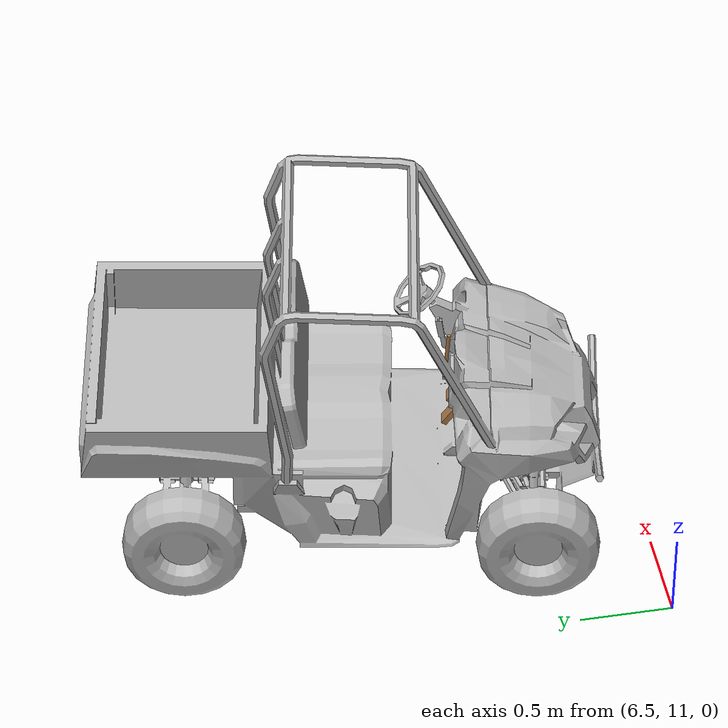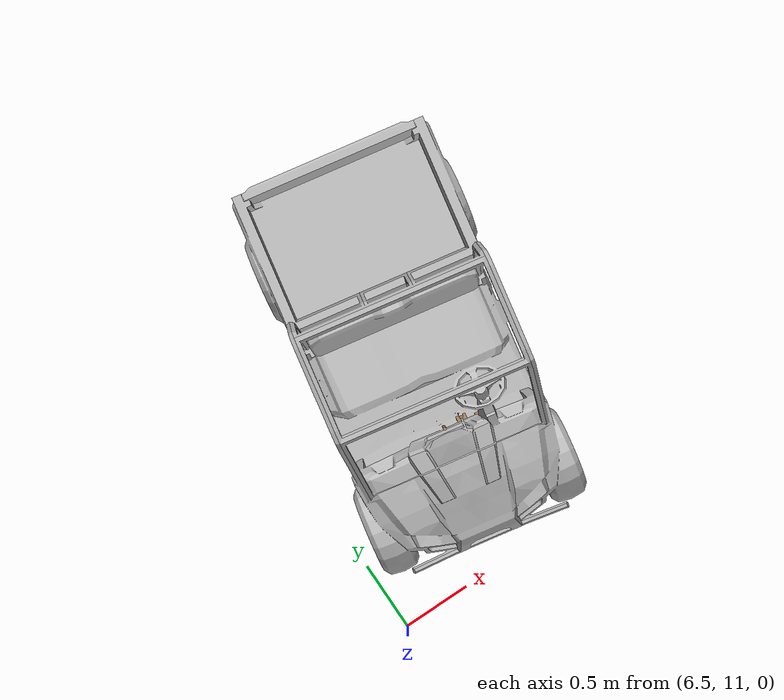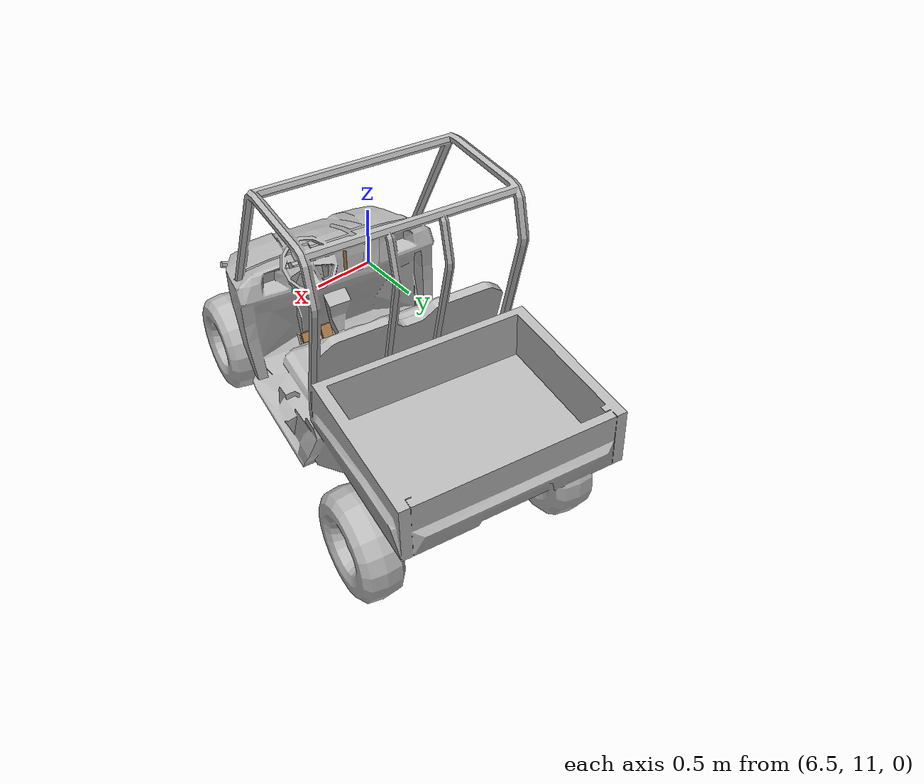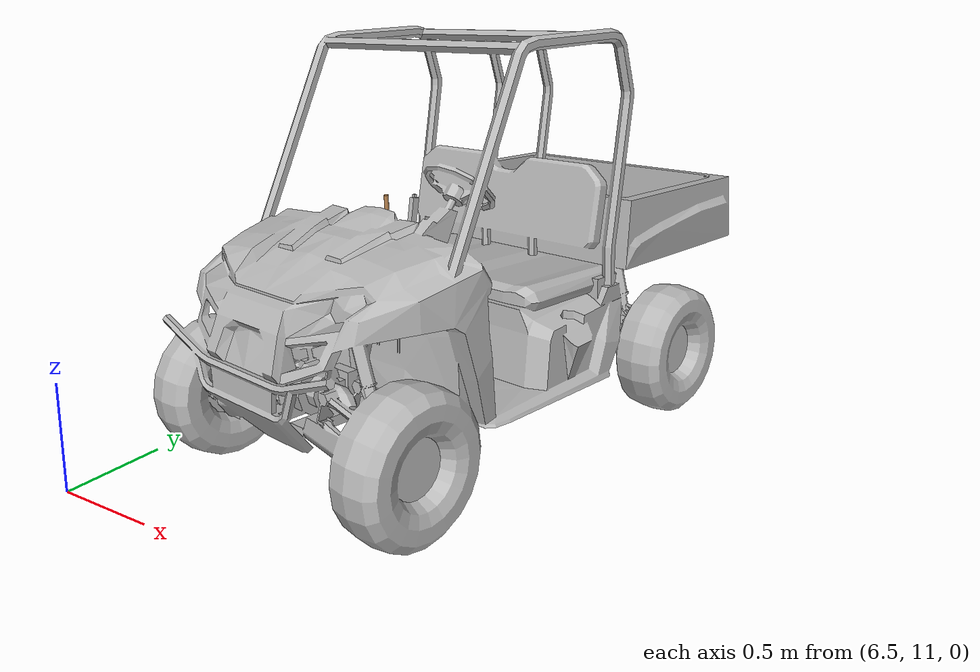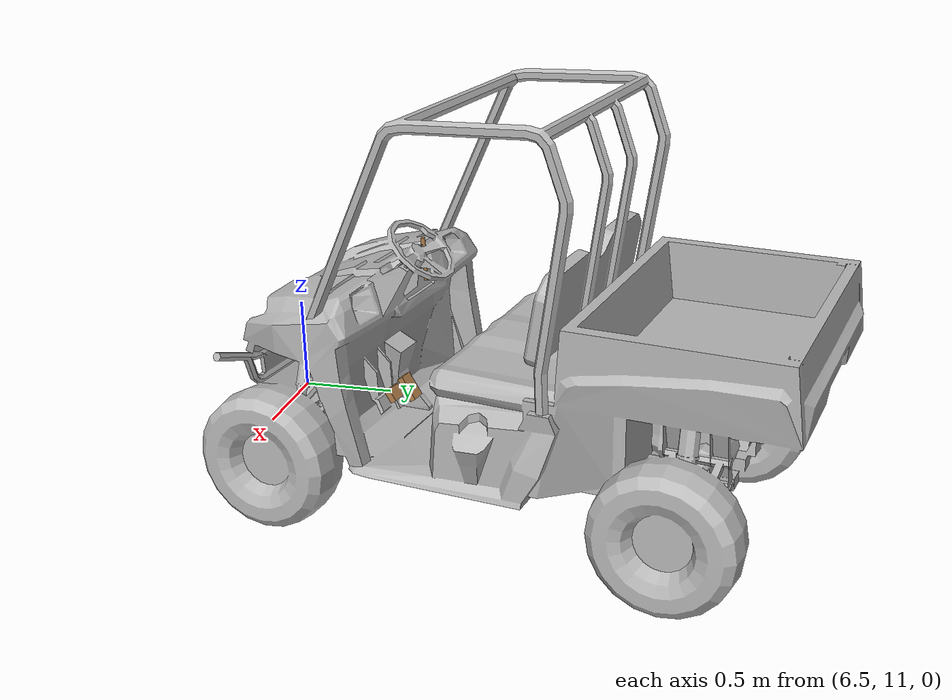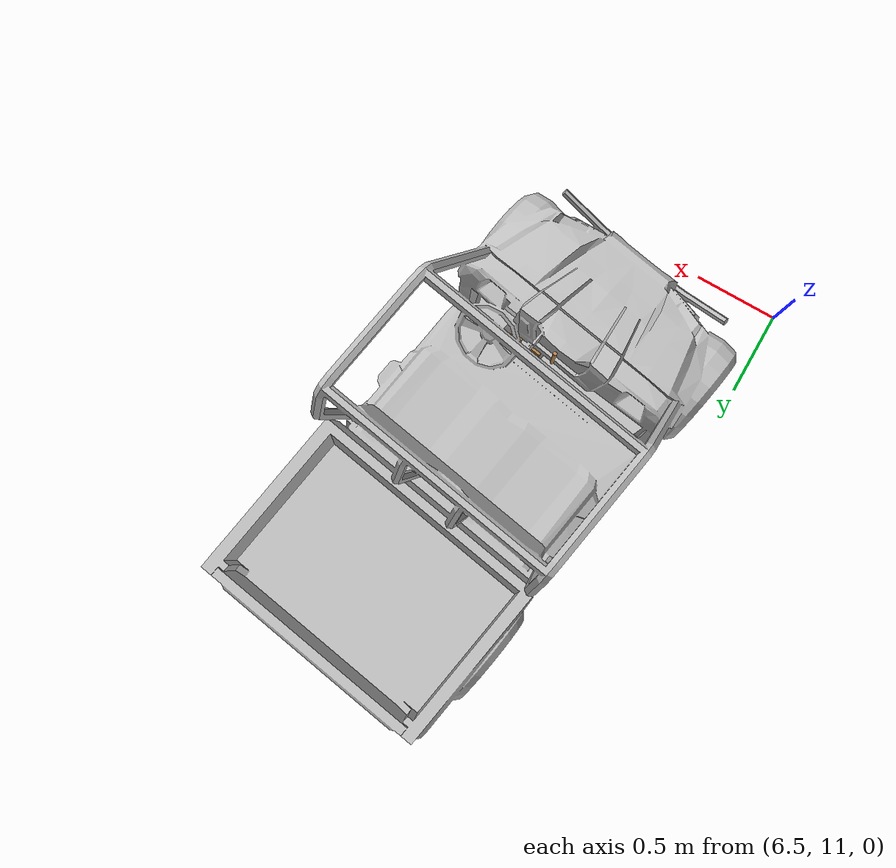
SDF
<sdf version="1.6">
 <world name="default">
  <model name="polaris_ranger_ev_clone_1_clone_clone_0">
   <static>true</static>
   <link name="chassis">
    <inertial>
     <mass>720</mass>
     <inertia><ixx>140</ixx><ixy>0</ixy><iyy>550</iyy><ixz>0</ixz><iyz>0</iyz><izz>550</izz></inertia>
    </inertial>
    <visual name="visual">
     <pose>0 0 0 0 0 -1.5708</pose>
     <geometry><mesh><uri>model://polaris_ranger_ev/meshes/polaris.dae</uri><scale>1 1 1</scale></mesh></geometry>
     <material>
      <script>
       <uri>model://polaris_ranger_ev/materials/scripts</uri>
       <uri>model://polaris_ranger_ev/materials/textures</uri>
       <name>Polaris/Diffuse</name>
      </script>
     </material>
    </visual>
    <collision name="chassis_bottom">
     <pose>0 0 0.35 0 -0 0</pose>
     <geometry><box><size>2 1 0.1</size></box></geometry>
    </collision>
    <collision name="cargo_bottom">
     <pose>-0.9 0 0.9 0 -0 0</pose>
     <geometry><box><size>0.9 1.2 0.01</size></box></geometry>
    </collision>
    <collision name="cargo_front">
     <pose>-0.45 0 1.025 0 -0 0</pose>
     <geometry><box><size>0.05 1.2 0.25</size></box></geometry>
    </collision>
    <collision name="cargo_back">
     <pose>-1.35 0 1.025 0 -0 0</pose>
     <geometry><box><size>0.05 1.2 0.25</size></box></geometry>
    </collision>
    <collision name="cargo_left">
     <pose>-0.9 0.6 1.025 0 -0 0</pose>
     <geometry><box><size>0.9 0.05 0.25</size></box></geometry>
    </collision>
    <collision name="cargo_right">
     <pose>-0.9 -0.6 1.025 0 -0 0</pose>
     <geometry><box><size>0.9 0.05 0.25</size></box></geometry>
    </collision>
    <collision name="seat">
     <pose>-0.1 0 0.625 0 -0 0</pose>
     <geometry><box><size>0.6 1 0.65</size></box></geometry>
    </collision>
    <collision name="seat_back">
     <pose>-0.3 0 1.125 0 -0.2 0</pose>
     <geometry><box><size>0.1 1 0.4</size></box></geometry>
    </collision>
    <collision name="engine">
     <pose>0.95 0 0.7 0 -0 0</pose>
     <geometry><box><size>0.58 1 0.8</size></box></geometry>
    </collision>
    <collision name="steering_column">
     <pose>0.525 0.3 1.025 0 -0.8 0</pose>
     <geometry><cylinder><radius>0.05</radius><length>0.45</length></cylinder></geometry>
    </collision>
   </link>
   <link name="rear_right_wheel">
    <pose>-0.85 -0.6 0.32 1.5708 -0 0</pose>
    <inertial>
     <mass>12</mass>
     <inertia><ixx>0.5</ixx><ixy>0</ixy><iyy>0.5</iyy><ixz>0</ixz><iyz>0</iyz><izz>1</izz></inertia>
    </inertial>
    <collision name="collision">
     <geometry><cylinder><radius>0.32</radius><length>0.23</length></cylinder></geometry>
     <surface>
      <friction><ode><mu>100000</mu><mu2>100000</mu2><slip1>0</slip1><slip2>0</slip2></ode></friction>
     </surface>
    </collision>
   </link>
   <joint name="rear_right_wheel_joint" type="revolute">
    <pose>0 0 -0.1 0 -0 0</pose>
    <child>rear_right_wheel</child>
    <parent>chassis</parent>
    <axis>
     <xyz>0 1 0</xyz>
     <use_parent_model_frame>1</use_parent_model_frame>
     <limit><lower>-1e+16</lower><upper>1e+16</upper></limit>
     <dynamics><spring_reference>0</spring_reference><spring_stiffness>0</spring_stiffness></dynamics>
    </axis>
    <physics><ode><limit><cfm>0</cfm><erp>0.9</erp></limit></ode></physics>
   </joint>
   <link name="rear_left_wheel">
    <pose>-0.85 0.6 0.32 1.5708 -0 0</pose>
    <inertial>
     <mass>12</mass>
     <inertia><ixx>0.5</ixx><ixy>0</ixy><iyy>0.5</iyy><ixz>0</ixz><iyz>0</iyz><izz>1</izz></inertia>
    </inertial>
    <collision name="collision">
     <geometry><cylinder><radius>0.32</radius><length>0.23</length></cylinder></geometry>
     <surface>
      <friction><ode><mu>100000</mu><mu2>100000</mu2><slip1>0</slip1><slip2>0</slip2></ode></friction>
     </surface>
    </collision>
   </link>
   <joint name="rear_left_wheel_joint" type="revolute">
    <child>rear_left_wheel</child>
    <parent>chassis</parent>
    <axis>
     <xyz>0 1 0</xyz>
     <use_parent_model_frame>1</use_parent_model_frame>
     <limit><lower>-1e+16</lower><upper>1e+16</upper></limit>
     <dynamics><spring_reference>0</spring_reference><spring_stiffness>0</spring_stiffness></dynamics>
    </axis>
    <physics><ode><limit><cfm>0</cfm><erp>0.9</erp></limit></ode></physics>
   </joint>
   <link name="front_right_wheel">
    <pose>1.03 -0.6 0.32 1.5708 -0 0</pose>
    <inertial>
     <mass>12</mass>
     <inertia><ixx>0.5</ixx><ixy>0</ixy><iyy>0.5</iyy><ixz>0</ixz><iyz>0</iyz><izz>1</izz></inertia>
    </inertial>
    <collision name="collision">
     <geometry><cylinder><radius>0.32</radius><length>0.23</length></cylinder></geometry>
     <surface>
      <friction><ode><mu>100000</mu><mu2>100000</mu2><slip1>0</slip1><slip2>0</slip2></ode></friction>
     </surface>
    </collision>
   </link>
   <link name="front_right_wheel_steering_block">
    <pose>1.03 -0.5 0.32 1.5708 -0 0</pose>
    <inertial>
     <mass>1</mass>
     <inertia><ixx>1</ixx><ixy>0</ixy><iyy>1</iyy><ixz>0</ixz><iyz>0</iyz><izz>1</izz></inertia>
    </inertial>
    <collision name="collision">
     <geometry><cylinder><radius>0.05</radius><length>0.01</length></cylinder></geometry>
    </collision>
   </link>
   <joint name="front_right_steering_joint" type="revolute">
    <child>front_right_wheel_steering_block</child>
    <parent>chassis</parent>
    <axis>
     <xyz>0 0 1</xyz>
     <limit><lower>-1</lower><upper>1</upper></limit>
     <use_parent_model_frame>1</use_parent_model_frame>
     <dynamics><spring_reference>0</spring_reference><spring_stiffness>0</spring_stiffness></dynamics>
    </axis>
    <physics><ode><limit><cfm>0</cfm><erp>0.9</erp></limit></ode></physics>
   </joint>
   <joint name="front_right_wheel_joint" type="revolute">
    <child>front_right_wheel</child>
    <parent>front_right_wheel_steering_block</parent>
    <axis>
     <xyz>0 1 0</xyz>
     <use_parent_model_frame>1</use_parent_model_frame>
     <limit><lower>-1e+16</lower><upper>1e+16</upper></limit>
     <dynamics><spring_reference>0</spring_reference><spring_stiffness>0</spring_stiffness></dynamics>
    </axis>
    <physics><ode><limit><cfm>0</cfm><erp>0.9</erp></limit></ode></physics>
   </joint>
   <link name="front_left_wheel">
    <pose>1.03 0.6 0.32 1.5708 -0 0</pose>
    <inertial>
     <mass>12</mass>
     <inertia><ixx>0.5</ixx><ixy>0</ixy><iyy>0.5</iyy><ixz>0</ixz><iyz>0</iyz><izz>1</izz></inertia>
    </inertial>
    <collision name="collision">
     <geometry><cylinder><radius>0.32</radius><length>0.23</length></cylinder></geometry>
     <surface>
      <friction><ode><mu>100000</mu><mu2>100000</mu2><slip1>0</slip1><slip2>0</slip2></ode></friction>
     </surface>
    </collision>
   </link>
   <link name="front_left_wheel_steering_block">
    <pose>1.03 0.5 0.32 1.5708 -0 0</pose>
    <inertial>
     <mass>1</mass>
     <inertia><ixx>1</ixx><ixy>0</ixy><iyy>1</iyy><ixz>0</ixz><iyz>0</iyz><izz>1</izz></inertia>
    </inertial>
    <collision name="collision">
     <geometry><cylinder><radius>0.05</radius><length>0.01</length></cylinder></geometry>
    </collision>
   </link>
   <joint name="front_left_steering_joint" type="revolute">
    <child>front_left_wheel_steering_block</child>
    <parent>chassis</parent>
    <axis>
     <xyz>0 0 1</xyz>
     <limit><lower>-1</lower><upper>1</upper></limit>
     <use_parent_model_frame>1</use_parent_model_frame>
     <dynamics><spring_reference>0</spring_reference><spring_stiffness>0</spring_stiffness></dynamics>
    </axis>
    <physics><ode><limit><cfm>0</cfm><erp>0.9</erp></limit></ode></physics>
   </joint>
   <joint name="front_left_wheel_joint" type="revolute">
    <child>front_left_wheel</child>
    <parent>front_left_wheel_steering_block</parent>
    <axis>
     <xyz>0 1 0</xyz>
     <use_parent_model_frame>1</use_parent_model_frame>
     <limit><lower>-1e+16</lower><upper>1e+16</upper></limit>
     <dynamics><spring_reference>0</spring_reference><spring_stiffness>0</spring_stiffness></dynamics>
    </axis>
    <physics><ode><limit><cfm>0</cfm><erp>0.9</erp></limit></ode></physics>
   </joint>
   <link name="gas_pedal">
    <pose>0.53 0.14 0.56 0 -1 0</pose>
    <gravity>0</gravity>
    <inertial>
     <mass>0.1</mass>
     <inertia><ixx>0.01</ixx><ixy>0</ixy><ixz>0</ixz><iyy>0.01</iyy><iyz>0</iyz><izz>0.01</izz></inertia>
    </inertial>
    <collision name="gas_pedal_collision"><geometry><box><size>0.12 0.07 0.03</size></box></geometry></collision>
    <visual name="gas_pedal_visual">
     <geometry><box><size>0.12 0.07 0.03</size></box></geometry>
     <material>
      <script><uri>file://media/materials/scripts/gazebo.material</uri><name>Gazebo/Wood</name></script>
      <ambient>0.2 0.2 0.2 1</ambient>
      <diffuse>0.2 0.2 0.2 1</diffuse>
      <specular>0.2 0.2 0.2 1</specular>
      <emissive>0.5 0.5 0.5 1</emissive>
     </material>
    </visual>
   </link>
   <link name="brake_pedal">
    <gravity>0</gravity>
    <pose>0.54 0.27 0.58 0 -1 0</pose>
    <inertial>
     <mass>0.1</mass>
     <inertia><ixx>0.01</ixx><ixy>0</ixy><ixz>0</ixz><iyy>0.01</iyy><iyz>0</iyz><izz>0.01</izz></inertia>
    </inertial>
    <collision name="brake_pedal_collision">
     <geometry><box><size>0.06 0.08 0.03</size></box></geometry>
    </collision>
    <visual name="brake_pedal_visual">
     <geometry><box><size>0.06 0.08 0.03</size></box></geometry>
     <material>
      <script><uri>file://media/materials/scripts/gazebo.material</uri><name>Gazebo/Wood</name></script>
      <ambient>0.2 0.2 0.2 1</ambient>
      <diffuse>0.2 0.2 0.2 1</diffuse>
      <specular>0.2 0.2 0.2 1</specular>
      <emissive>0.5 0.5 0.5 1</emissive>
     </material>
    </visual>
   </link>
   <link name="steering_wheel">
    <pose>0.37 0.3 1.2 0 -0.8 0</pose>
    <inertial>
     <mass>1</mass>
     <inertia><ixx>0.1</ixx><ixy>0</ixy><ixz>0</ixz><iyy>0.1</iyy><iyz>0</iyz><izz>1</izz></inertia>
    </inertial>
    <collision name="steering_wheel_post_left">
     <pose>0 0.08 0 1.5708 -0 0</pose>
     <geometry><cylinder><radius>0.02</radius><length>0.15</length></cylinder></geometry>
    </collision>
    <collision name="steering_wheel_post_right">
     <pose>0 -0.08 0 1.5708 -0 0</pose>
     <geometry><cylinder><radius>0.02</radius><length>0.15</length></cylinder></geometry>
    </collision>
    <collision name="steering_wheel_post_middle">
     <pose>-0.08 0 0 3.14159 1.57079 3.14159</pose>
     <geometry><cylinder><radius>0.02</radius><length>0.15</length></cylinder></geometry>
    </collision>
    <collision name="collision00">
     <pose>0.15 0 0 3.14159 1.57079 -1.57079</pose>
     <geometry><cylinder><length>0.105066</length><radius>0.01</radius></cylinder></geometry>
    </collision>
    <collision name="collision01">
     <pose>0.121353 0.088168 0 3.14159 1.57079 -0.942483</pose>
     <geometry><cylinder><length>0.105066</length><radius>0.01</radius></cylinder></geometry>
    </collision>
    <collision name="collision02">
     <pose>0.046353 0.142658 0 3.14159 1.57079 -0.314163</pose>
     <geometry><cylinder><length>0.105066</length><radius>0.01</radius></cylinder></geometry>
    </collision>
    <collision name="collision03">
     <pose>-0.046353 0.142658 0 3.14159 1.57079 0.314163</pose>
     <geometry><cylinder><length>0.105066</length><radius>0.01</radius></cylinder></geometry>
    </collision>
    <collision name="collision04">
     <pose>-0.121353 0.088168 0 -3.14159 1.57079 0.942483</pose>
     <geometry><cylinder><length>0.105066</length><radius>0.01</radius></cylinder></geometry>
    </collision>
    <collision name="collision05">
     <pose>-0.15 0 0 -3.14159 1.57079 1.57079</pose>
     <geometry><cylinder><length>0.105066</length><radius>0.01</radius></cylinder></geometry>
    </collision>
    <collision name="collision06">
     <pose>-0.121353 -0.088168 0 3.14159 1.57079 2.19912</pose>
     <geometry><cylinder><length>0.105066</length><radius>0.01</radius></cylinder></geometry>
    </collision>
    <collision name="collision07">
     <pose>-0.046353 -0.142658 0 -3.14159 1.57079 2.82743</pose>
     <geometry><cylinder><length>0.105066</length><radius>0.01</radius></cylinder></geometry>
    </collision>
    <collision name="collision08">
     <pose>0.046353 -0.142658 0 3.14159 1.57079 -2.82743</pose>
     <geometry><cylinder><length>0.105066</length><radius>0.01</radius></cylinder></geometry>
    </collision>
    <collision name="collision09">
     <pose>0.121353 -0.088168 0 -3.14159 1.57079 -2.19911</pose>
     <geometry><cylinder><length>0.105066</length><radius>0.01</radius></cylinder></geometry>
    </collision>
   </link>
   <link name="hand_brake">
    <pose>0.5 0 1.05 3.14159 -0.058407 3.14159</pose>
    <inertial>
     <mass>1</mass>
     <pose>0 0 -0.15 0 -0 0</pose>
     <inertia><ixx>0.1</ixx><ixy>0</ixy><ixz>0</ixz><iyy>0.1</iyy><iyz>0</iyz><izz>1</izz></inertia>
    </inertial>
    <collision name="hand_brake_collision">
     <pose>0 0 -0.1 0 -0 0</pose>
     <geometry><cylinder><radius>0.01</radius><length>0.2</length></cylinder></geometry>
    </collision>
    <visual name="hand_brake_visual">
     <pose>0 0 -0.1 0 -0 0</pose>
     <geometry><cylinder><radius>0.01</radius><length>0.2</length></cylinder></geometry>
     <material>
      <script><uri>file://media/materials/scripts/gazebo.material</uri><name>Gazebo/Wood</name></script>
     </material>
    </visual>
   </link>
   <joint name="gas_joint" type="prismatic">
    <parent>chassis</parent>
    <child>gas_pedal</child>
    <axis>
     <xyz>1 0 -1</xyz>
     <limit><lower>0</lower><upper>0.15</upper></limit>
     <use_parent_model_frame>1</use_parent_model_frame>
     <dynamics><spring_reference>0</spring_reference><spring_stiffness>0</spring_stiffness></dynamics>
    </axis>
   </joint>
   <joint name="brake_joint" type="prismatic">
    <parent>chassis</parent>
    <child>brake_pedal</child>
    <axis>
     <xyz>1 0 -0.6</xyz>
     <limit><lower>0</lower><upper>0.15</upper></limit>
     <use_parent_model_frame>1</use_parent_model_frame>
     <dynamics><spring_reference>0</spring_reference><spring_stiffness>0</spring_stiffness></dynamics>
    </axis>
   </joint>
   <joint name="steering_joint" type="revolute">
    <pose>0 0 0 1.5708 -0.8 0</pose>
    <parent>chassis</parent>
    <child>steering_wheel</child>
    <axis>
     <xyz>-1 0 1.023</xyz>
     <limit><lower>-7.853</lower><upper>7.853</upper></limit>
     <use_parent_model_frame>1</use_parent_model_frame>
     <dynamics><spring_reference>0</spring_reference><spring_stiffness>0</spring_stiffness></dynamics>
    </axis>
   </joint>
   <joint name="hand_brake_joint" type="revolute">
    <parent>chassis</parent>
    <child>hand_brake</child>
    <axis>
     <xyz>0 -1 0</xyz>
     <limit><lower>0</lower><upper>0.6</upper></limit>
     <use_parent_model_frame>1</use_parent_model_frame>
     <dynamics><spring_reference>0</spring_reference><spring_stiffness>0</spring_stiffness></dynamics>
    </axis>
   </joint>
   <pose>7.57044 12.5371 -4.3e-05 -0 4.9e-05 -1.7534</pose>
  </model>
 </world>
</sdf>
